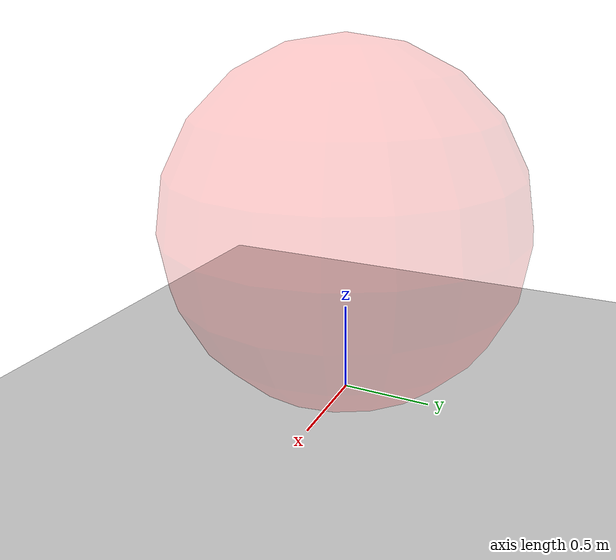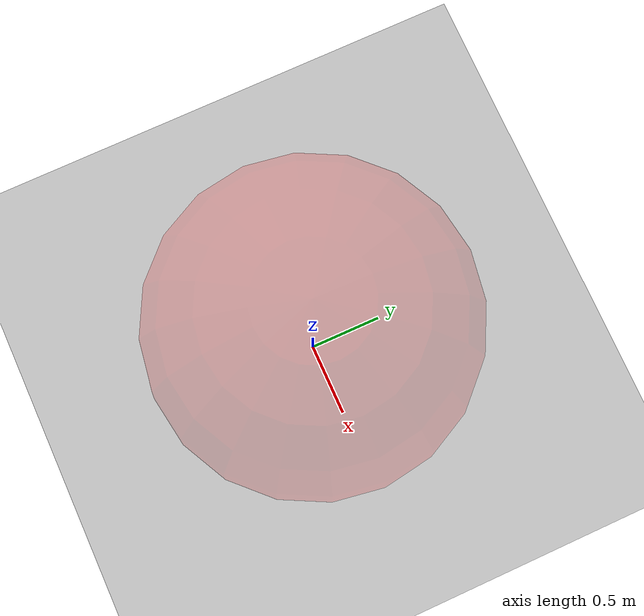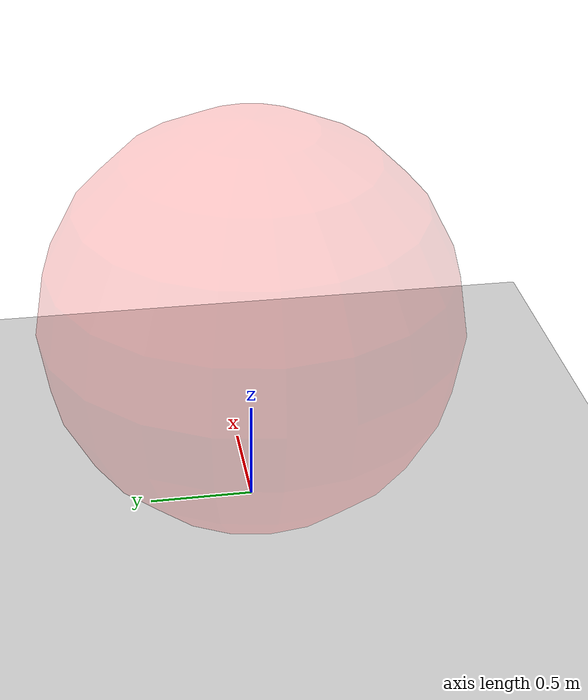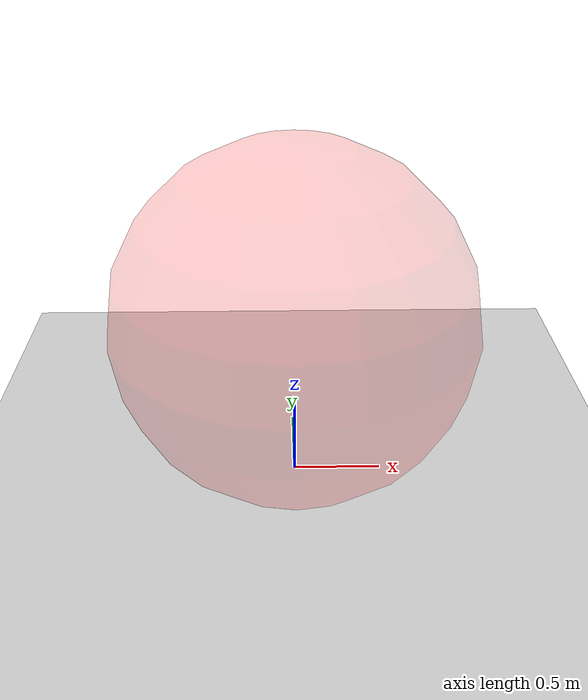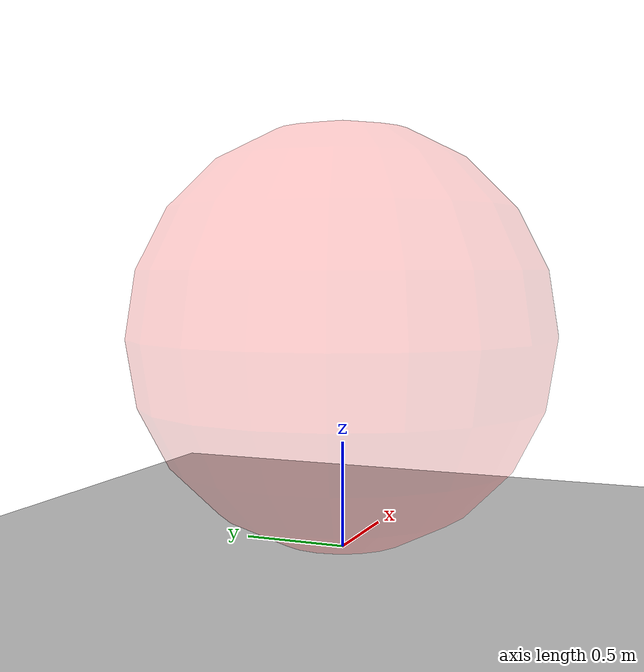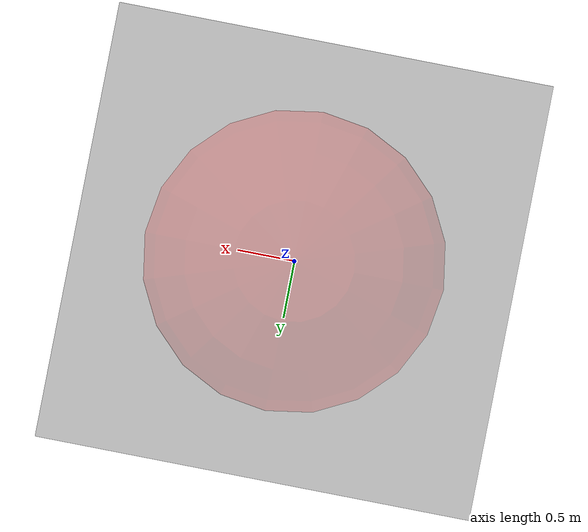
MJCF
<mujoco model="spherical_field_crossing">
  <compiler coordinate="local" inertiafromgeom="true"/>

  <option gravity="0 0 0" timestep="0.002"/>

  <extension>
    <plugin plugin="mujoco.magnet">
      <instance name="magnetic_environment">
        <config key="type" value="spherical_field"/>
        <config key="center" value="0.0 0.0 1.0"/>
        <config key="Bmax" value="1.0 1.0 1.0"/>
        <config key="radius" value="1.0"/>
      </instance>
    </plugin>
  </extension>

  <worldbody>
    <light pos="0 0 4" dir="0 0 -1"/>

    <geom name="floor" type="plane" size="5 5 0.1" rgba="0.8 0.8 0.8 1"/>

    <site name="field_center" pos="0 0 1" size="1.0" rgba="1 0 0 0.2"/>

    <body name="ball" pos="-0.5 0.0 1.3">
      <freejoint name="ball_free"/>
      <geom name="ball_geom" type="sphere" size="0.15" rgba="0.2 0.6 1 0.5"/>
      <plugin plugin="mujoco.magnet">
        <config key="type" value="induced_magnet"/>
        <config key="mu_r" value="1000"/>
        <config key="V" value="5e-6"/>
      </plugin>
    </body>
  </worldbody>

  <keyframe>
    <key name="initial_velocity" qpos="0 0 0 1 0 0 0" qvel="0 0 0 0 0 0"/>
  </keyframe>
</mujoco>
